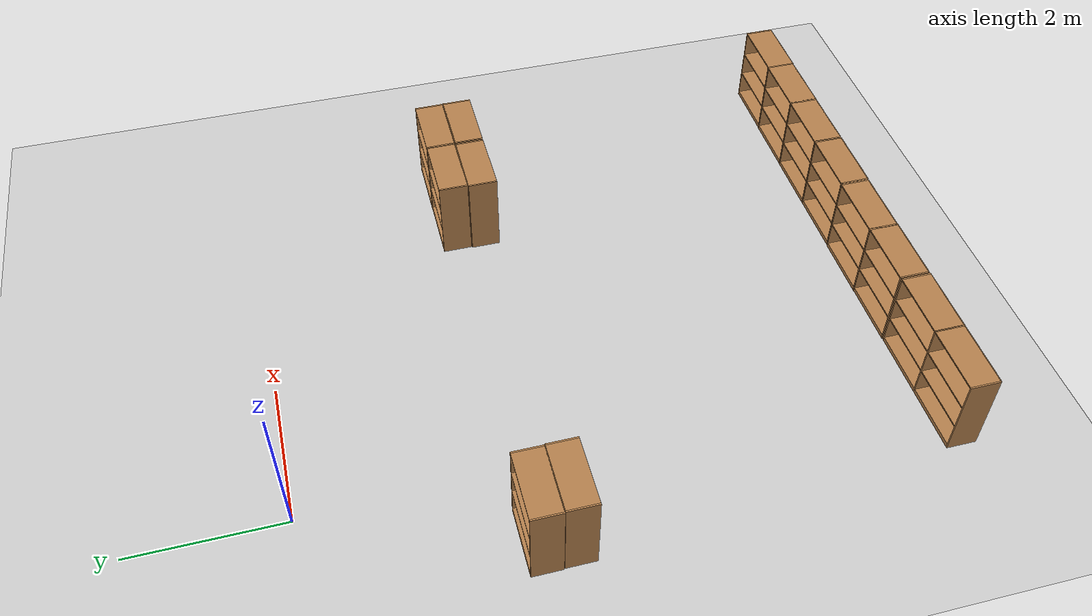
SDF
<sdf version="1.7">
 <world name="default">
  <model name="ground_plane">
   <static>1</static>
   <link name="link">
    <collision name="collision">
     <geometry><plane><normal>0 0 1</normal><size>100 100</size></plane></geometry>
     <surface><friction><ode><mu>100</mu><mu2>50</mu2></ode></friction></surface>
    </collision>
    <visual name="visual">
     <cast_shadows>0</cast_shadows>
     <geometry><plane><normal>0 0 1</normal><size>100 100</size></plane></geometry>
     <material>
      <script><uri>file://media/materials/scripts/gazebo.material</uri><name>Gazebo/Grey</name></script>
     </material>
    </visual>
   </link>
  </model>
  <model name="bookshelf">
   <static>1</static>
   <link name="link">
    <inertial><mass>1</mass></inertial>
    <collision name="back">
     <pose>0 0.005 0.6 0 -0 0</pose>
     <geometry><box><size>0.9 0.01 1.2</size></box></geometry>
    </collision>
    <visual name="visual1">
     <pose>0 0.005 0.6 0 -0 0</pose>
     <geometry><box><size>0.9 0.01 1.2</size></box></geometry>
     <material>
      <script><uri>file://media/materials/scripts/gazebo.material</uri><name>Gazebo/Wood</name></script>
     </material>
    </visual>
    <collision name="left_side">
     <pose>0.45 -0.195 0.6 0 -0 0</pose>
     <geometry><box><size>0.02 0.4 1.2</size></box></geometry>
    </collision>
    <visual name="visual2">
     <pose>0.45 -0.195 0.6 0 -0 0</pose>
     <geometry><box><size>0.02 0.4 1.2</size></box></geometry>
     <material>
      <script><uri>file://media/materials/scripts/gazebo.material</uri><name>Gazebo/Wood</name></script>
     </material>
    </visual>
    <collision name="right_side">
     <pose>-0.45 -0.195 0.6 0 -0 0</pose>
     <geometry><box><size>0.02 0.4 1.2</size></box></geometry>
    </collision>
    <visual name="visual3">
     <pose>-0.45 -0.195 0.6 0 -0 0</pose>
     <geometry><box><size>0.02 0.4 1.2</size></box></geometry>
     <material>
      <script><uri>file://media/materials/scripts/gazebo.material</uri><name>Gazebo/Wood</name></script>
     </material>
    </visual>
    <collision name="bottom">
     <pose>0 -0.195 0.03 0 -0 0</pose>
     <geometry><box><size>0.88 0.4 0.06</size></box></geometry>
    </collision>
    <visual name="visual4">
     <pose>0 -0.195 0.03 0 -0 0</pose>
     <geometry><box><size>0.88 0.4 0.06</size></box></geometry>
     <material>
      <script><uri>file://media/materials/scripts/gazebo.material</uri><name>Gazebo/Wood</name></script>
     </material>
    </visual>
    <collision name="top">
     <pose>0 -0.195 1.19 0 -0 0</pose>
     <geometry><box><size>0.88 0.4 0.02</size></box></geometry>
    </collision>
    <visual name="visual5">
     <pose>0 -0.195 1.19 0 -0 0</pose>
     <geometry><box><size>0.88 0.4 0.02</size></box></geometry>
     <material>
      <script><uri>file://media/materials/scripts/gazebo.material</uri><name>Gazebo/Wood</name></script>
     </material>
    </visual>
    <collision name="low_shelf">
     <pose>0 -0.195 0.43 0 -0 0</pose>
     <geometry><box><size>0.88 0.4 0.02</size></box></geometry>
    </collision>
    <visual name="visual6">
     <pose>0 -0.195 0.43 0 -0 0</pose>
     <geometry><box><size>0.88 0.4 0.02</size></box></geometry>
     <material>
      <script><uri>file://media/materials/scripts/gazebo.material</uri><name>Gazebo/Wood</name></script>
     </material>
    </visual>
    <collision name="high_shelf">
     <pose>0 -0.195 0.8 0 -0 0</pose>
     <geometry><box><size>0.88 0.4 0.02</size></box></geometry>
    </collision>
    <visual name="visual7">
     <pose>0 -0.195 0.8 0 -0 0</pose>
     <geometry><box><size>0.88 0.4 0.02</size></box></geometry>
     <material>
      <script><uri>file://media/materials/scripts/gazebo.material</uri><name>Gazebo/Wood</name></script>
     </material>
    </visual>
   </link>
   <pose>-0.509028 -8.39134 0 0 0 -3.14107</pose>
  </model>
  <model name="bookshelf_clone">
   <static>1</static>
   <link name="link">
    <inertial><mass>1</mass></inertial>
    <collision name="back">
     <pose>0 0.005 0.6 0 -0 0</pose>
     <geometry><box><size>0.9 0.01 1.2</size></box></geometry>
    </collision>
    <visual name="visual1">
     <pose>0 0.005 0.6 0 -0 0</pose>
     <geometry><box><size>0.9 0.01 1.2</size></box></geometry>
     <material>
      <script><uri>file://media/materials/scripts/gazebo.material</uri><name>Gazebo/Wood</name></script>
     </material>
    </visual>
    <collision name="left_side">
     <pose>0.45 -0.195 0.6 0 -0 0</pose>
     <geometry><box><size>0.02 0.4 1.2</size></box></geometry>
    </collision>
    <visual name="visual2">
     <pose>0.45 -0.195 0.6 0 -0 0</pose>
     <geometry><box><size>0.02 0.4 1.2</size></box></geometry>
     <material>
      <script><uri>file://media/materials/scripts/gazebo.material</uri><name>Gazebo/Wood</name></script>
     </material>
    </visual>
    <collision name="right_side">
     <pose>-0.45 -0.195 0.6 0 -0 0</pose>
     <geometry><box><size>0.02 0.4 1.2</size></box></geometry>
    </collision>
    <visual name="visual3">
     <pose>-0.45 -0.195 0.6 0 -0 0</pose>
     <geometry><box><size>0.02 0.4 1.2</size></box></geometry>
     <material>
      <script><uri>file://media/materials/scripts/gazebo.material</uri><name>Gazebo/Wood</name></script>
     </material>
    </visual>
    <collision name="bottom">
     <pose>0 -0.195 0.03 0 -0 0</pose>
     <geometry><box><size>0.88 0.4 0.06</size></box></geometry>
    </collision>
    <visual name="visual4">
     <pose>0 -0.195 0.03 0 -0 0</pose>
     <geometry><box><size>0.88 0.4 0.06</size></box></geometry>
     <material>
      <script><uri>file://media/materials/scripts/gazebo.material</uri><name>Gazebo/Wood</name></script>
     </material>
    </visual>
    <collision name="top">
     <pose>0 -0.195 1.19 0 -0 0</pose>
     <geometry><box><size>0.88 0.4 0.02</size></box></geometry>
    </collision>
    <visual name="visual5">
     <pose>0 -0.195 1.19 0 -0 0</pose>
     <geometry><box><size>0.88 0.4 0.02</size></box></geometry>
     <material>
      <script><uri>file://media/materials/scripts/gazebo.material</uri><name>Gazebo/Wood</name></script>
     </material>
    </visual>
    <collision name="low_shelf">
     <pose>0 -0.195 0.43 0 -0 0</pose>
     <geometry><box><size>0.88 0.4 0.02</size></box></geometry>
    </collision>
    <visual name="visual6">
     <pose>0 -0.195 0.43 0 -0 0</pose>
     <geometry><box><size>0.88 0.4 0.02</size></box></geometry>
     <material>
      <script><uri>file://media/materials/scripts/gazebo.material</uri><name>Gazebo/Wood</name></script>
     </material>
    </visual>
    <collision name="high_shelf">
     <pose>0 -0.195 0.8 0 -0 0</pose>
     <geometry><box><size>0.88 0.4 0.02</size></box></geometry>
    </collision>
    <visual name="visual7">
     <pose>0 -0.195 0.8 0 -0 0</pose>
     <geometry><box><size>0.88 0.4 0.02</size></box></geometry>
     <material>
      <script><uri>file://media/materials/scripts/gazebo.material</uri><name>Gazebo/Wood</name></script>
     </material>
    </visual>
   </link>
   <pose>0.39286 -8.39134 0 0 0 -3.14107</pose>
  </model>
  <model name="bookshelf_clone_0_clone_0_clone_clone_clone_clone_clone">
   <static>1</static>
   <link name="link">
    <inertial><mass>1</mass></inertial>
    <collision name="back">
     <pose>0 0.005 0.6 0 -0 0</pose>
     <geometry><box><size>0.9 0.01 1.2</size></box></geometry>
    </collision>
    <visual name="visual1">
     <pose>0 0.005 0.6 0 -0 0</pose>
     <geometry><box><size>0.9 0.01 1.2</size></box></geometry>
     <material>
      <script><uri>file://media/materials/scripts/gazebo.material</uri><name>Gazebo/Wood</name></script>
     </material>
    </visual>
    <collision name="left_side">
     <pose>0.45 -0.195 0.6 0 -0 0</pose>
     <geometry><box><size>0.02 0.4 1.2</size></box></geometry>
    </collision>
    <visual name="visual2">
     <pose>0.45 -0.195 0.6 0 -0 0</pose>
     <geometry><box><size>0.02 0.4 1.2</size></box></geometry>
     <material>
      <script><uri>file://media/materials/scripts/gazebo.material</uri><name>Gazebo/Wood</name></script>
     </material>
    </visual>
    <collision name="right_side">
     <pose>-0.45 -0.195 0.6 0 -0 0</pose>
     <geometry><box><size>0.02 0.4 1.2</size></box></geometry>
    </collision>
    <visual name="visual3">
     <pose>-0.45 -0.195 0.6 0 -0 0</pose>
     <geometry><box><size>0.02 0.4 1.2</size></box></geometry>
     <material>
      <script><uri>file://media/materials/scripts/gazebo.material</uri><name>Gazebo/Wood</name></script>
     </material>
    </visual>
    <collision name="bottom">
     <pose>0 -0.195 0.03 0 -0 0</pose>
     <geometry><box><size>0.88 0.4 0.06</size></box></geometry>
    </collision>
    <visual name="visual4">
     <pose>0 -0.195 0.03 0 -0 0</pose>
     <geometry><box><size>0.88 0.4 0.06</size></box></geometry>
     <material>
      <script><uri>file://media/materials/scripts/gazebo.material</uri><name>Gazebo/Wood</name></script>
     </material>
    </visual>
    <collision name="top">
     <pose>0 -0.195 1.19 0 -0 0</pose>
     <geometry><box><size>0.88 0.4 0.02</size></box></geometry>
    </collision>
    <visual name="visual5">
     <pose>0 -0.195 1.19 0 -0 0</pose>
     <geometry><box><size>0.88 0.4 0.02</size></box></geometry>
     <material>
      <script><uri>file://media/materials/scripts/gazebo.material</uri><name>Gazebo/Wood</name></script>
     </material>
    </visual>
    <collision name="low_shelf">
     <pose>0 -0.195 0.43 0 -0 0</pose>
     <geometry><box><size>0.88 0.4 0.02</size></box></geometry>
    </collision>
    <visual name="visual6">
     <pose>0 -0.195 0.43 0 -0 0</pose>
     <geometry><box><size>0.88 0.4 0.02</size></box></geometry>
     <material>
      <script><uri>file://media/materials/scripts/gazebo.material</uri><name>Gazebo/Wood</name></script>
     </material>
    </visual>
    <collision name="high_shelf">
     <pose>0 -0.195 0.8 0 -0 0</pose>
     <geometry><box><size>0.88 0.4 0.02</size></box></geometry>
    </collision>
    <visual name="visual7">
     <pose>0 -0.195 0.8 0 -0 0</pose>
     <geometry><box><size>0.88 0.4 0.02</size></box></geometry>
     <material>
      <script><uri>file://media/materials/scripts/gazebo.material</uri><name>Gazebo/Wood</name></script>
     </material>
    </visual>
   </link>
   <pose>-0.940238 -2.94994 0 0 0 -3.14107</pose>
  </model>
  <model name="bookshelf_clone_0_clone_0_clone_clone_clone_clone_clone_1_clone_clone_clone_clone_clone_clone_clone_clone_clone_clone_0_clone_clone_clone_clone_clone_0_clone">
   <static>1</static>
   <link name="link">
    <inertial><mass>1</mass></inertial>
    <collision name="back">
     <pose>0 0.005 0.6 0 -0 0</pose>
     <geometry><box><size>0.9 0.01 1.2</size></box></geometry>
    </collision>
    <visual name="visual1">
     <pose>0 0.005 0.6 0 -0 0</pose>
     <geometry><box><size>0.9 0.01 1.2</size></box></geometry>
     <material>
      <script><uri>file://media/materials/scripts/gazebo.material</uri><name>Gazebo/Wood</name></script>
     </material>
    </visual>
    <collision name="left_side">
     <pose>0.45 -0.195 0.6 0 -0 0</pose>
     <geometry><box><size>0.02 0.4 1.2</size></box></geometry>
    </collision>
    <visual name="visual2">
     <pose>0.45 -0.195 0.6 0 -0 0</pose>
     <geometry><box><size>0.02 0.4 1.2</size></box></geometry>
     <material>
      <script><uri>file://media/materials/scripts/gazebo.material</uri><name>Gazebo/Wood</name></script>
     </material>
    </visual>
    <collision name="right_side">
     <pose>-0.45 -0.195 0.6 0 -0 0</pose>
     <geometry><box><size>0.02 0.4 1.2</size></box></geometry>
    </collision>
    <visual name="visual3">
     <pose>-0.45 -0.195 0.6 0 -0 0</pose>
     <geometry><box><size>0.02 0.4 1.2</size></box></geometry>
     <material>
      <script><uri>file://media/materials/scripts/gazebo.material</uri><name>Gazebo/Wood</name></script>
     </material>
    </visual>
    <collision name="bottom">
     <pose>0 -0.195 0.03 0 -0 0</pose>
     <geometry><box><size>0.88 0.4 0.06</size></box></geometry>
    </collision>
    <visual name="visual4">
     <pose>0 -0.195 0.03 0 -0 0</pose>
     <geometry><box><size>0.88 0.4 0.06</size></box></geometry>
     <material>
      <script><uri>file://media/materials/scripts/gazebo.material</uri><name>Gazebo/Wood</name></script>
     </material>
    </visual>
    <collision name="top">
     <pose>0 -0.195 1.19 0 -0 0</pose>
     <geometry><box><size>0.88 0.4 0.02</size></box></geometry>
    </collision>
    <visual name="visual5">
     <pose>0 -0.195 1.19 0 -0 0</pose>
     <geometry><box><size>0.88 0.4 0.02</size></box></geometry>
     <material>
      <script><uri>file://media/materials/scripts/gazebo.material</uri><name>Gazebo/Wood</name></script>
     </material>
    </visual>
    <collision name="low_shelf">
     <pose>0 -0.195 0.43 0 -0 0</pose>
     <geometry><box><size>0.88 0.4 0.02</size></box></geometry>
    </collision>
    <visual name="visual6">
     <pose>0 -0.195 0.43 0 -0 0</pose>
     <geometry><box><size>0.88 0.4 0.02</size></box></geometry>
     <material>
      <script><uri>file://media/materials/scripts/gazebo.material</uri><name>Gazebo/Wood</name></script>
     </material>
    </visual>
    <collision name="high_shelf">
     <pose>0 -0.195 0.8 0 -0 0</pose>
     <geometry><box><size>0.88 0.4 0.02</size></box></geometry>
    </collision>
    <visual name="visual7">
     <pose>0 -0.195 0.8 0 -0 0</pose>
     <geometry><box><size>0.88 0.4 0.02</size></box></geometry>
     <material>
      <script><uri>file://media/materials/scripts/gazebo.material</uri><name>Gazebo/Wood</name></script>
     </material>
    </visual>
   </link>
   <pose>-0.933109 -2.966 0.004614 0 -0 0.000147</pose>
  </model>
  <model name="bookshelf_clone_0_clone_0_clone_clone_clone_clone_0">
   <static>1</static>
   <link name="link">
    <inertial><mass>1</mass></inertial>
    <collision name="back">
     <pose>0 0.005 0.6 0 -0 0</pose>
     <geometry><box><size>0.9 0.01 1.2</size></box></geometry>
    </collision>
    <visual name="visual1">
     <pose>0 0.005 0.6 0 -0 0</pose>
     <geometry><box><size>0.9 0.01 1.2</size></box></geometry>
     <material>
      <script><uri>file://media/materials/scripts/gazebo.material</uri><name>Gazebo/Wood</name></script>
     </material>
    </visual>
    <collision name="left_side">
     <pose>0.45 -0.195 0.6 0 -0 0</pose>
     <geometry><box><size>0.02 0.4 1.2</size></box></geometry>
    </collision>
    <visual name="visual2">
     <pose>0.45 -0.195 0.6 0 -0 0</pose>
     <geometry><box><size>0.02 0.4 1.2</size></box></geometry>
     <material>
      <script><uri>file://media/materials/scripts/gazebo.material</uri><name>Gazebo/Wood</name></script>
     </material>
    </visual>
    <collision name="right_side">
     <pose>-0.45 -0.195 0.6 0 -0 0</pose>
     <geometry><box><size>0.02 0.4 1.2</size></box></geometry>
    </collision>
    <visual name="visual3">
     <pose>-0.45 -0.195 0.6 0 -0 0</pose>
     <geometry><box><size>0.02 0.4 1.2</size></box></geometry>
     <material>
      <script><uri>file://media/materials/scripts/gazebo.material</uri><name>Gazebo/Wood</name></script>
     </material>
    </visual>
    <collision name="bottom">
     <pose>0 -0.195 0.03 0 -0 0</pose>
     <geometry><box><size>0.88 0.4 0.06</size></box></geometry>
    </collision>
    <visual name="visual4">
     <pose>0 -0.195 0.03 0 -0 0</pose>
     <geometry><box><size>0.88 0.4 0.06</size></box></geometry>
     <material>
      <script><uri>file://media/materials/scripts/gazebo.material</uri><name>Gazebo/Wood</name></script>
     </material>
    </visual>
    <collision name="top">
     <pose>0 -0.195 1.19 0 -0 0</pose>
     <geometry><box><size>0.88 0.4 0.02</size></box></geometry>
    </collision>
    <visual name="visual5">
     <pose>0 -0.195 1.19 0 -0 0</pose>
     <geometry><box><size>0.88 0.4 0.02</size></box></geometry>
     <material>
      <script><uri>file://media/materials/scripts/gazebo.material</uri><name>Gazebo/Wood</name></script>
     </material>
    </visual>
    <collision name="low_shelf">
     <pose>0 -0.195 0.43 0 -0 0</pose>
     <geometry><box><size>0.88 0.4 0.02</size></box></geometry>
    </collision>
    <visual name="visual6">
     <pose>0 -0.195 0.43 0 -0 0</pose>
     <geometry><box><size>0.88 0.4 0.02</size></box></geometry>
     <material>
      <script><uri>file://media/materials/scripts/gazebo.material</uri><name>Gazebo/Wood</name></script>
     </material>
    </visual>
    <collision name="high_shelf">
     <pose>0 -0.195 0.8 0 -0 0</pose>
     <geometry><box><size>0.88 0.4 0.02</size></box></geometry>
    </collision>
    <visual name="visual7">
     <pose>0 -0.195 0.8 0 -0 0</pose>
     <geometry><box><size>0.88 0.4 0.02</size></box></geometry>
     <material>
      <script><uri>file://media/materials/scripts/gazebo.material</uri><name>Gazebo/Wood</name></script>
     </material>
    </visual>
   </link>
   <pose>4.40371 -2.98907 0 0 0 -3.14107</pose>
  </model>
  <model name="bookshelf_clone_0_clone_0_clone_clone_clone_clone_1">
   <static>1</static>
   <link name="link">
    <inertial><mass>1</mass></inertial>
    <collision name="back">
     <pose>0 0.005 0.6 0 -0 0</pose>
     <geometry><box><size>0.9 0.01 1.2</size></box></geometry>
    </collision>
    <visual name="visual1">
     <pose>0 0.005 0.6 0 -0 0</pose>
     <geometry><box><size>0.9 0.01 1.2</size></box></geometry>
     <material>
      <script><uri>file://media/materials/scripts/gazebo.material</uri><name>Gazebo/Wood</name></script>
     </material>
    </visual>
    <collision name="left_side">
     <pose>0.45 -0.195 0.6 0 -0 0</pose>
     <geometry><box><size>0.02 0.4 1.2</size></box></geometry>
    </collision>
    <visual name="visual2">
     <pose>0.45 -0.195 0.6 0 -0 0</pose>
     <geometry><box><size>0.02 0.4 1.2</size></box></geometry>
     <material>
      <script><uri>file://media/materials/scripts/gazebo.material</uri><name>Gazebo/Wood</name></script>
     </material>
    </visual>
    <collision name="right_side">
     <pose>-0.45 -0.195 0.6 0 -0 0</pose>
     <geometry><box><size>0.02 0.4 1.2</size></box></geometry>
    </collision>
    <visual name="visual3">
     <pose>-0.45 -0.195 0.6 0 -0 0</pose>
     <geometry><box><size>0.02 0.4 1.2</size></box></geometry>
     <material>
      <script><uri>file://media/materials/scripts/gazebo.material</uri><name>Gazebo/Wood</name></script>
     </material>
    </visual>
    <collision name="bottom">
     <pose>0 -0.195 0.03 0 -0 0</pose>
     <geometry><box><size>0.88 0.4 0.06</size></box></geometry>
    </collision>
    <visual name="visual4">
     <pose>0 -0.195 0.03 0 -0 0</pose>
     <geometry><box><size>0.88 0.4 0.06</size></box></geometry>
     <material>
      <script><uri>file://media/materials/scripts/gazebo.material</uri><name>Gazebo/Wood</name></script>
     </material>
    </visual>
    <collision name="top">
     <pose>0 -0.195 1.19 0 -0 0</pose>
     <geometry><box><size>0.88 0.4 0.02</size></box></geometry>
    </collision>
    <visual name="visual5">
     <pose>0 -0.195 1.19 0 -0 0</pose>
     <geometry><box><size>0.88 0.4 0.02</size></box></geometry>
     <material>
      <script><uri>file://media/materials/scripts/gazebo.material</uri><name>Gazebo/Wood</name></script>
     </material>
    </visual>
    <collision name="low_shelf">
     <pose>0 -0.195 0.43 0 -0 0</pose>
     <geometry><box><size>0.88 0.4 0.02</size></box></geometry>
    </collision>
    <visual name="visual6">
     <pose>0 -0.195 0.43 0 -0 0</pose>
     <geometry><box><size>0.88 0.4 0.02</size></box></geometry>
     <material>
      <script><uri>file://media/materials/scripts/gazebo.material</uri><name>Gazebo/Wood</name></script>
     </material>
    </visual>
    <collision name="high_shelf">
     <pose>0 -0.195 0.8 0 -0 0</pose>
     <geometry><box><size>0.88 0.4 0.02</size></box></geometry>
    </collision>
    <visual name="visual7">
     <pose>0 -0.195 0.8 0 -0 0</pose>
     <geometry><box><size>0.88 0.4 0.02</size></box></geometry>
     <material>
      <script><uri>file://media/materials/scripts/gazebo.material</uri><name>Gazebo/Wood</name></script>
     </material>
    </visual>
   </link>
   <pose>5.31764 -2.98563 0 0 0 -3.14107</pose>
  </model>
  <model name="bookshelf_clone_clone_0">
   <static>1</static>
   <link name="link">
    <inertial><mass>1</mass></inertial>
    <collision name="back">
     <pose>0 0.005 0.6 0 -0 0</pose>
     <geometry><box><size>0.9 0.01 1.2</size></box></geometry>
    </collision>
    <visual name="visual1">
     <pose>0 0.005 0.6 0 -0 0</pose>
     <geometry><box><size>0.9 0.01 1.2</size></box></geometry>
     <material>
      <script><uri>file://media/materials/scripts/gazebo.material</uri><name>Gazebo/Wood</name></script>
     </material>
    </visual>
    <collision name="left_side">
     <pose>0.45 -0.195 0.6 0 -0 0</pose>
     <geometry><box><size>0.02 0.4 1.2</size></box></geometry>
    </collision>
    <visual name="visual2">
     <pose>0.45 -0.195 0.6 0 -0 0</pose>
     <geometry><box><size>0.02 0.4 1.2</size></box></geometry>
     <material>
      <script><uri>file://media/materials/scripts/gazebo.material</uri><name>Gazebo/Wood</name></script>
     </material>
    </visual>
    <collision name="right_side">
     <pose>-0.45 -0.195 0.6 0 -0 0</pose>
     <geometry><box><size>0.02 0.4 1.2</size></box></geometry>
    </collision>
    <visual name="visual3">
     <pose>-0.45 -0.195 0.6 0 -0 0</pose>
     <geometry><box><size>0.02 0.4 1.2</size></box></geometry>
     <material>
      <script><uri>file://media/materials/scripts/gazebo.material</uri><name>Gazebo/Wood</name></script>
     </material>
    </visual>
    <collision name="bottom">
     <pose>0 -0.195 0.03 0 -0 0</pose>
     <geometry><box><size>0.88 0.4 0.06</size></box></geometry>
    </collision>
    <visual name="visual4">
     <pose>0 -0.195 0.03 0 -0 0</pose>
     <geometry><box><size>0.88 0.4 0.06</size></box></geometry>
     <material>
      <script><uri>file://media/materials/scripts/gazebo.material</uri><name>Gazebo/Wood</name></script>
     </material>
    </visual>
    <collision name="top">
     <pose>0 -0.195 1.19 0 -0 0</pose>
     <geometry><box><size>0.88 0.4 0.02</size></box></geometry>
    </collision>
    <visual name="visual5">
     <pose>0 -0.195 1.19 0 -0 0</pose>
     <geometry><box><size>0.88 0.4 0.02</size></box></geometry>
     <material>
      <script><uri>file://media/materials/scripts/gazebo.material</uri><name>Gazebo/Wood</name></script>
     </material>
    </visual>
    <collision name="low_shelf">
     <pose>0 -0.195 0.43 0 -0 0</pose>
     <geometry><box><size>0.88 0.4 0.02</size></box></geometry>
    </collision>
    <visual name="visual6">
     <pose>0 -0.195 0.43 0 -0 0</pose>
     <geometry><box><size>0.88 0.4 0.02</size></box></geometry>
     <material>
      <script><uri>file://media/materials/scripts/gazebo.material</uri><name>Gazebo/Wood</name></script>
     </material>
    </visual>
    <collision name="high_shelf">
     <pose>0 -0.195 0.8 0 -0 0</pose>
     <geometry><box><size>0.88 0.4 0.02</size></box></geometry>
    </collision>
    <visual name="visual7">
     <pose>0 -0.195 0.8 0 -0 0</pose>
     <geometry><box><size>0.88 0.4 0.02</size></box></geometry>
     <material>
      <script><uri>file://media/materials/scripts/gazebo.material</uri><name>Gazebo/Wood</name></script>
     </material>
    </visual>
   </link>
   <pose>1.32278 -8.38482 0 0 0 -3.14107</pose>
  </model>
  <model name="bookshelf_clone_clone_1">
   <static>1</static>
   <link name="link">
    <inertial><mass>1</mass></inertial>
    <collision name="back">
     <pose>0 0.005 0.6 0 -0 0</pose>
     <geometry><box><size>0.9 0.01 1.2</size></box></geometry>
    </collision>
    <visual name="visual1">
     <pose>0 0.005 0.6 0 -0 0</pose>
     <geometry><box><size>0.9 0.01 1.2</size></box></geometry>
     <material>
      <script><uri>file://media/materials/scripts/gazebo.material</uri><name>Gazebo/Wood</name></script>
     </material>
    </visual>
    <collision name="left_side">
     <pose>0.45 -0.195 0.6 0 -0 0</pose>
     <geometry><box><size>0.02 0.4 1.2</size></box></geometry>
    </collision>
    <visual name="visual2">
     <pose>0.45 -0.195 0.6 0 -0 0</pose>
     <geometry><box><size>0.02 0.4 1.2</size></box></geometry>
     <material>
      <script><uri>file://media/materials/scripts/gazebo.material</uri><name>Gazebo/Wood</name></script>
     </material>
    </visual>
    <collision name="right_side">
     <pose>-0.45 -0.195 0.6 0 -0 0</pose>
     <geometry><box><size>0.02 0.4 1.2</size></box></geometry>
    </collision>
    <visual name="visual3">
     <pose>-0.45 -0.195 0.6 0 -0 0</pose>
     <geometry><box><size>0.02 0.4 1.2</size></box></geometry>
     <material>
      <script><uri>file://media/materials/scripts/gazebo.material</uri><name>Gazebo/Wood</name></script>
     </material>
    </visual>
    <collision name="bottom">
     <pose>0 -0.195 0.03 0 -0 0</pose>
     <geometry><box><size>0.88 0.4 0.06</size></box></geometry>
    </collision>
    <visual name="visual4">
     <pose>0 -0.195 0.03 0 -0 0</pose>
     <geometry><box><size>0.88 0.4 0.06</size></box></geometry>
     <material>
      <script><uri>file://media/materials/scripts/gazebo.material</uri><name>Gazebo/Wood</name></script>
     </material>
    </visual>
    <collision name="top">
     <pose>0 -0.195 1.19 0 -0 0</pose>
     <geometry><box><size>0.88 0.4 0.02</size></box></geometry>
    </collision>
    <visual name="visual5">
     <pose>0 -0.195 1.19 0 -0 0</pose>
     <geometry><box><size>0.88 0.4 0.02</size></box></geometry>
     <material>
      <script><uri>file://media/materials/scripts/gazebo.material</uri><name>Gazebo/Wood</name></script>
     </material>
    </visual>
    <collision name="low_shelf">
     <pose>0 -0.195 0.43 0 -0 0</pose>
     <geometry><box><size>0.88 0.4 0.02</size></box></geometry>
    </collision>
    <visual name="visual6">
     <pose>0 -0.195 0.43 0 -0 0</pose>
     <geometry><box><size>0.88 0.4 0.02</size></box></geometry>
     <material>
      <script><uri>file://media/materials/scripts/gazebo.material</uri><name>Gazebo/Wood</name></script>
     </material>
    </visual>
    <collision name="high_shelf">
     <pose>0 -0.195 0.8 0 -0 0</pose>
     <geometry><box><size>0.88 0.4 0.02</size></box></geometry>
    </collision>
    <visual name="visual7">
     <pose>0 -0.195 0.8 0 -0 0</pose>
     <geometry><box><size>0.88 0.4 0.02</size></box></geometry>
     <material>
      <script><uri>file://media/materials/scripts/gazebo.material</uri><name>Gazebo/Wood</name></script>
     </material>
    </visual>
   </link>
   <pose>2.22926 -8.38065 0 0 0 -3.14107</pose>
  </model>
  <model name="bookshelf_clone_clone_1_clone">
   <static>1</static>
   <link name="link">
    <inertial><mass>1</mass></inertial>
    <collision name="back">
     <pose>0 0.005 0.6 0 -0 0</pose>
     <geometry><box><size>0.9 0.01 1.2</size></box></geometry>
    </collision>
    <visual name="visual1">
     <pose>0 0.005 0.6 0 -0 0</pose>
     <geometry><box><size>0.9 0.01 1.2</size></box></geometry>
     <material>
      <script><uri>file://media/materials/scripts/gazebo.material</uri><name>Gazebo/Wood</name></script>
     </material>
    </visual>
    <collision name="left_side">
     <pose>0.45 -0.195 0.6 0 -0 0</pose>
     <geometry><box><size>0.02 0.4 1.2</size></box></geometry>
    </collision>
    <visual name="visual2">
     <pose>0.45 -0.195 0.6 0 -0 0</pose>
     <geometry><box><size>0.02 0.4 1.2</size></box></geometry>
     <material>
      <script><uri>file://media/materials/scripts/gazebo.material</uri><name>Gazebo/Wood</name></script>
     </material>
    </visual>
    <collision name="right_side">
     <pose>-0.45 -0.195 0.6 0 -0 0</pose>
     <geometry><box><size>0.02 0.4 1.2</size></box></geometry>
    </collision>
    <visual name="visual3">
     <pose>-0.45 -0.195 0.6 0 -0 0</pose>
     <geometry><box><size>0.02 0.4 1.2</size></box></geometry>
     <material>
      <script><uri>file://media/materials/scripts/gazebo.material</uri><name>Gazebo/Wood</name></script>
     </material>
    </visual>
    <collision name="bottom">
     <pose>0 -0.195 0.03 0 -0 0</pose>
     <geometry><box><size>0.88 0.4 0.06</size></box></geometry>
    </collision>
    <visual name="visual4">
     <pose>0 -0.195 0.03 0 -0 0</pose>
     <geometry><box><size>0.88 0.4 0.06</size></box></geometry>
     <material>
      <script><uri>file://media/materials/scripts/gazebo.material</uri><name>Gazebo/Wood</name></script>
     </material>
    </visual>
    <collision name="top">
     <pose>0 -0.195 1.19 0 -0 0</pose>
     <geometry><box><size>0.88 0.4 0.02</size></box></geometry>
    </collision>
    <visual name="visual5">
     <pose>0 -0.195 1.19 0 -0 0</pose>
     <geometry><box><size>0.88 0.4 0.02</size></box></geometry>
     <material>
      <script><uri>file://media/materials/scripts/gazebo.material</uri><name>Gazebo/Wood</name></script>
     </material>
    </visual>
    <collision name="low_shelf">
     <pose>0 -0.195 0.43 0 -0 0</pose>
     <geometry><box><size>0.88 0.4 0.02</size></box></geometry>
    </collision>
    <visual name="visual6">
     <pose>0 -0.195 0.43 0 -0 0</pose>
     <geometry><box><size>0.88 0.4 0.02</size></box></geometry>
     <material>
      <script><uri>file://media/materials/scripts/gazebo.material</uri><name>Gazebo/Wood</name></script>
     </material>
    </visual>
    <collision name="high_shelf">
     <pose>0 -0.195 0.8 0 -0 0</pose>
     <geometry><box><size>0.88 0.4 0.02</size></box></geometry>
    </collision>
    <visual name="visual7">
     <pose>0 -0.195 0.8 0 -0 0</pose>
     <geometry><box><size>0.88 0.4 0.02</size></box></geometry>
     <material>
      <script><uri>file://media/materials/scripts/gazebo.material</uri><name>Gazebo/Wood</name></script>
     </material>
    </visual>
   </link>
   <pose>3.15267 -8.38707 0 0 0 -3.14107</pose>
  </model>
  <model name="bookshelf_clone_clone_1_clone_clone">
   <static>1</static>
   <link name="link">
    <inertial><mass>1</mass></inertial>
    <collision name="back">
     <pose>0 0.005 0.6 0 -0 0</pose>
     <geometry><box><size>0.9 0.01 1.2</size></box></geometry>
    </collision>
    <visual name="visual1">
     <pose>0 0.005 0.6 0 -0 0</pose>
     <geometry><box><size>0.9 0.01 1.2</size></box></geometry>
     <material>
      <script><uri>file://media/materials/scripts/gazebo.material</uri><name>Gazebo/Wood</name></script>
     </material>
    </visual>
    <collision name="left_side">
     <pose>0.45 -0.195 0.6 0 -0 0</pose>
     <geometry><box><size>0.02 0.4 1.2</size></box></geometry>
    </collision>
    <visual name="visual2">
     <pose>0.45 -0.195 0.6 0 -0 0</pose>
     <geometry><box><size>0.02 0.4 1.2</size></box></geometry>
     <material>
      <script><uri>file://media/materials/scripts/gazebo.material</uri><name>Gazebo/Wood</name></script>
     </material>
    </visual>
    <collision name="right_side">
     <pose>-0.45 -0.195 0.6 0 -0 0</pose>
     <geometry><box><size>0.02 0.4 1.2</size></box></geometry>
    </collision>
    <visual name="visual3">
     <pose>-0.45 -0.195 0.6 0 -0 0</pose>
     <geometry><box><size>0.02 0.4 1.2</size></box></geometry>
     <material>
      <script><uri>file://media/materials/scripts/gazebo.material</uri><name>Gazebo/Wood</name></script>
     </material>
    </visual>
    <collision name="bottom">
     <pose>0 -0.195 0.03 0 -0 0</pose>
     <geometry><box><size>0.88 0.4 0.06</size></box></geometry>
    </collision>
    <visual name="visual4">
     <pose>0 -0.195 0.03 0 -0 0</pose>
     <geometry><box><size>0.88 0.4 0.06</size></box></geometry>
     <material>
      <script><uri>file://media/materials/scripts/gazebo.material</uri><name>Gazebo/Wood</name></script>
     </material>
    </visual>
    <collision name="top">
     <pose>0 -0.195 1.19 0 -0 0</pose>
     <geometry><box><size>0.88 0.4 0.02</size></box></geometry>
    </collision>
    <visual name="visual5">
     <pose>0 -0.195 1.19 0 -0 0</pose>
     <geometry><box><size>0.88 0.4 0.02</size></box></geometry>
     <material>
      <script><uri>file://media/materials/scripts/gazebo.material</uri><name>Gazebo/Wood</name></script>
     </material>
    </visual>
    <collision name="low_shelf">
     <pose>0 -0.195 0.43 0 -0 0</pose>
     <geometry><box><size>0.88 0.4 0.02</size></box></geometry>
    </collision>
    <visual name="visual6">
     <pose>0 -0.195 0.43 0 -0 0</pose>
     <geometry><box><size>0.88 0.4 0.02</size></box></geometry>
     <material>
      <script><uri>file://media/materials/scripts/gazebo.material</uri><name>Gazebo/Wood</name></script>
     </material>
    </visual>
    <collision name="high_shelf">
     <pose>0 -0.195 0.8 0 -0 0</pose>
     <geometry><box><size>0.88 0.4 0.02</size></box></geometry>
    </collision>
    <visual name="visual7">
     <pose>0 -0.195 0.8 0 -0 0</pose>
     <geometry><box><size>0.88 0.4 0.02</size></box></geometry>
     <material>
      <script><uri>file://media/materials/scripts/gazebo.material</uri><name>Gazebo/Wood</name></script>
     </material>
    </visual>
   </link>
   <pose>4.0663 -8.38554 0 0 0 -3.14107</pose>
  </model>
  <model name="bookshelf_clone_clone_1_clone_clone_0">
   <static>1</static>
   <link name="link">
    <inertial><mass>1</mass></inertial>
    <collision name="back">
     <pose>0 0.005 0.6 0 -0 0</pose>
     <geometry><box><size>0.9 0.01 1.2</size></box></geometry>
    </collision>
    <visual name="visual1">
     <pose>0 0.005 0.6 0 -0 0</pose>
     <geometry><box><size>0.9 0.01 1.2</size></box></geometry>
     <material>
      <script><uri>file://media/materials/scripts/gazebo.material</uri><name>Gazebo/Wood</name></script>
     </material>
    </visual>
    <collision name="left_side">
     <pose>0.45 -0.195 0.6 0 -0 0</pose>
     <geometry><box><size>0.02 0.4 1.2</size></box></geometry>
    </collision>
    <visual name="visual2">
     <pose>0.45 -0.195 0.6 0 -0 0</pose>
     <geometry><box><size>0.02 0.4 1.2</size></box></geometry>
     <material>
      <script><uri>file://media/materials/scripts/gazebo.material</uri><name>Gazebo/Wood</name></script>
     </material>
    </visual>
    <collision name="right_side">
     <pose>-0.45 -0.195 0.6 0 -0 0</pose>
     <geometry><box><size>0.02 0.4 1.2</size></box></geometry>
    </collision>
    <visual name="visual3">
     <pose>-0.45 -0.195 0.6 0 -0 0</pose>
     <geometry><box><size>0.02 0.4 1.2</size></box></geometry>
     <material>
      <script><uri>file://media/materials/scripts/gazebo.material</uri><name>Gazebo/Wood</name></script>
     </material>
    </visual>
    <collision name="bottom">
     <pose>0 -0.195 0.03 0 -0 0</pose>
     <geometry><box><size>0.88 0.4 0.06</size></box></geometry>
    </collision>
    <visual name="visual4">
     <pose>0 -0.195 0.03 0 -0 0</pose>
     <geometry><box><size>0.88 0.4 0.06</size></box></geometry>
     <material>
      <script><uri>file://media/materials/scripts/gazebo.material</uri><name>Gazebo/Wood</name></script>
     </material>
    </visual>
    <collision name="top">
     <pose>0 -0.195 1.19 0 -0 0</pose>
     <geometry><box><size>0.88 0.4 0.02</size></box></geometry>
    </collision>
    <visual name="visual5">
     <pose>0 -0.195 1.19 0 -0 0</pose>
     <geometry><box><size>0.88 0.4 0.02</size></box></geometry>
     <material>
      <script><uri>file://media/materials/scripts/gazebo.material</uri><name>Gazebo/Wood</name></script>
     </material>
    </visual>
    <collision name="low_shelf">
     <pose>0 -0.195 0.43 0 -0 0</pose>
     <geometry><box><size>0.88 0.4 0.02</size></box></geometry>
    </collision>
    <visual name="visual6">
     <pose>0 -0.195 0.43 0 -0 0</pose>
     <geometry><box><size>0.88 0.4 0.02</size></box></geometry>
     <material>
      <script><uri>file://media/materials/scripts/gazebo.material</uri><name>Gazebo/Wood</name></script>
     </material>
    </visual>
    <collision name="high_shelf">
     <pose>0 -0.195 0.8 0 -0 0</pose>
     <geometry><box><size>0.88 0.4 0.02</size></box></geometry>
    </collision>
    <visual name="visual7">
     <pose>0 -0.195 0.8 0 -0 0</pose>
     <geometry><box><size>0.88 0.4 0.02</size></box></geometry>
     <material>
      <script><uri>file://media/materials/scripts/gazebo.material</uri><name>Gazebo/Wood</name></script>
     </material>
    </visual>
   </link>
   <pose>4.95611 -8.38803 0 0 0 -3.14107</pose>
  </model>
  <model name="bookshelf_clone_clone_1_clone_clone_0_clone">
   <static>1</static>
   <link name="link">
    <inertial><mass>1</mass></inertial>
    <collision name="back">
     <pose>0 0.005 0.6 0 -0 0</pose>
     <geometry><box><size>0.9 0.01 1.2</size></box></geometry>
    </collision>
    <visual name="visual1">
     <pose>0 0.005 0.6 0 -0 0</pose>
     <geometry><box><size>0.9 0.01 1.2</size></box></geometry>
     <material>
      <script><uri>file://media/materials/scripts/gazebo.material</uri><name>Gazebo/Wood</name></script>
     </material>
    </visual>
    <collision name="left_side">
     <pose>0.45 -0.195 0.6 0 -0 0</pose>
     <geometry><box><size>0.02 0.4 1.2</size></box></geometry>
    </collision>
    <visual name="visual2">
     <pose>0.45 -0.195 0.6 0 -0 0</pose>
     <geometry><box><size>0.02 0.4 1.2</size></box></geometry>
     <material>
      <script><uri>file://media/materials/scripts/gazebo.material</uri><name>Gazebo/Wood</name></script>
     </material>
    </visual>
    <collision name="right_side">
     <pose>-0.45 -0.195 0.6 0 -0 0</pose>
     <geometry><box><size>0.02 0.4 1.2</size></box></geometry>
    </collision>
    <visual name="visual3">
     <pose>-0.45 -0.195 0.6 0 -0 0</pose>
     <geometry><box><size>0.02 0.4 1.2</size></box></geometry>
     <material>
      <script><uri>file://media/materials/scripts/gazebo.material</uri><name>Gazebo/Wood</name></script>
     </material>
    </visual>
    <collision name="bottom">
     <pose>0 -0.195 0.03 0 -0 0</pose>
     <geometry><box><size>0.88 0.4 0.06</size></box></geometry>
    </collision>
    <visual name="visual4">
     <pose>0 -0.195 0.03 0 -0 0</pose>
     <geometry><box><size>0.88 0.4 0.06</size></box></geometry>
     <material>
      <script><uri>file://media/materials/scripts/gazebo.material</uri><name>Gazebo/Wood</name></script>
     </material>
    </visual>
    <collision name="top">
     <pose>0 -0.195 1.19 0 -0 0</pose>
     <geometry><box><size>0.88 0.4 0.02</size></box></geometry>
    </collision>
    <visual name="visual5">
     <pose>0 -0.195 1.19 0 -0 0</pose>
     <geometry><box><size>0.88 0.4 0.02</size></box></geometry>
     <material>
      <script><uri>file://media/materials/scripts/gazebo.material</uri><name>Gazebo/Wood</name></script>
     </material>
    </visual>
    <collision name="low_shelf">
     <pose>0 -0.195 0.43 0 -0 0</pose>
     <geometry><box><size>0.88 0.4 0.02</size></box></geometry>
    </collision>
    <visual name="visual6">
     <pose>0 -0.195 0.43 0 -0 0</pose>
     <geometry><box><size>0.88 0.4 0.02</size></box></geometry>
     <material>
      <script><uri>file://media/materials/scripts/gazebo.material</uri><name>Gazebo/Wood</name></script>
     </material>
    </visual>
    <collision name="high_shelf">
     <pose>0 -0.195 0.8 0 -0 0</pose>
     <geometry><box><size>0.88 0.4 0.02</size></box></geometry>
    </collision>
    <visual name="visual7">
     <pose>0 -0.195 0.8 0 -0 0</pose>
     <geometry><box><size>0.88 0.4 0.02</size></box></geometry>
     <material>
      <script><uri>file://media/materials/scripts/gazebo.material</uri><name>Gazebo/Wood</name></script>
     </material>
    </visual>
   </link>
   <pose>5.85405 -8.39377 0 0 0 -3.14107</pose>
  </model>
  <model name="bookshelf_clone_0_clone_0_clone_clone_clone_clone_clone_1_clone_clone_clone_clone_clone_clone_clone_clone_clone_clone_0_clone_clone_clone_clone_clone_0_clone_1_clone_0">
   <static>1</static>
   <link name="link">
    <inertial><mass>1</mass></inertial>
    <collision name="back">
     <pose>0 0.005 0.6 0 -0 0</pose>
     <geometry><box><size>0.9 0.01 1.2</size></box></geometry>
    </collision>
    <visual name="visual1">
     <pose>0 0.005 0.6 0 -0 0</pose>
     <geometry><box><size>0.9 0.01 1.2</size></box></geometry>
     <material>
      <script><uri>file://media/materials/scripts/gazebo.material</uri><name>Gazebo/Wood</name></script>
     </material>
    </visual>
    <collision name="left_side">
     <pose>0.45 -0.195 0.6 0 -0 0</pose>
     <geometry><box><size>0.02 0.4 1.2</size></box></geometry>
    </collision>
    <visual name="visual2">
     <pose>0.45 -0.195 0.6 0 -0 0</pose>
     <geometry><box><size>0.02 0.4 1.2</size></box></geometry>
     <material>
      <script><uri>file://media/materials/scripts/gazebo.material</uri><name>Gazebo/Wood</name></script>
     </material>
    </visual>
    <collision name="right_side">
     <pose>-0.45 -0.195 0.6 0 -0 0</pose>
     <geometry><box><size>0.02 0.4 1.2</size></box></geometry>
    </collision>
    <visual name="visual3">
     <pose>-0.45 -0.195 0.6 0 -0 0</pose>
     <geometry><box><size>0.02 0.4 1.2</size></box></geometry>
     <material>
      <script><uri>file://media/materials/scripts/gazebo.material</uri><name>Gazebo/Wood</name></script>
     </material>
    </visual>
    <collision name="bottom">
     <pose>0 -0.195 0.03 0 -0 0</pose>
     <geometry><box><size>0.88 0.4 0.06</size></box></geometry>
    </collision>
    <visual name="visual4">
     <pose>0 -0.195 0.03 0 -0 0</pose>
     <geometry><box><size>0.88 0.4 0.06</size></box></geometry>
     <material>
      <script><uri>file://media/materials/scripts/gazebo.material</uri><name>Gazebo/Wood</name></script>
     </material>
    </visual>
    <collision name="top">
     <pose>0 -0.195 1.19 0 -0 0</pose>
     <geometry><box><size>0.88 0.4 0.02</size></box></geometry>
    </collision>
    <visual name="visual5">
     <pose>0 -0.195 1.19 0 -0 0</pose>
     <geometry><box><size>0.88 0.4 0.02</size></box></geometry>
     <material>
      <script><uri>file://media/materials/scripts/gazebo.material</uri><name>Gazebo/Wood</name></script>
     </material>
    </visual>
    <collision name="low_shelf">
     <pose>0 -0.195 0.43 0 -0 0</pose>
     <geometry><box><size>0.88 0.4 0.02</size></box></geometry>
    </collision>
    <visual name="visual6">
     <pose>0 -0.195 0.43 0 -0 0</pose>
     <geometry><box><size>0.88 0.4 0.02</size></box></geometry>
     <material>
      <script><uri>file://media/materials/scripts/gazebo.material</uri><name>Gazebo/Wood</name></script>
     </material>
    </visual>
    <collision name="high_shelf">
     <pose>0 -0.195 0.8 0 -0 0</pose>
     <geometry><box><size>0.88 0.4 0.02</size></box></geometry>
    </collision>
    <visual name="visual7">
     <pose>0 -0.195 0.8 0 -0 0</pose>
     <geometry><box><size>0.88 0.4 0.02</size></box></geometry>
     <material>
      <script><uri>file://media/materials/scripts/gazebo.material</uri><name>Gazebo/Wood</name></script>
     </material>
    </visual>
   </link>
   <pose>4.38141 -3.009 0.004614 0 -0 0.000147</pose>
  </model>
  <model name="bookshelf_clone_0_clone_0_clone_clone_clone_clone_clone_1_clone_clone_clone_clone_clone_clone_clone_clone_clone_clone_0_clone_clone_clone_clone_clone_0_clone_1_clone_1">
   <static>1</static>
   <link name="link">
    <inertial><mass>1</mass></inertial>
    <collision name="back">
     <pose>0 0.005 0.6 0 -0 0</pose>
     <geometry><box><size>0.9 0.01 1.2</size></box></geometry>
    </collision>
    <visual name="visual1">
     <pose>0 0.005 0.6 0 -0 0</pose>
     <geometry><box><size>0.9 0.01 1.2</size></box></geometry>
     <material>
      <script><uri>file://media/materials/scripts/gazebo.material</uri><name>Gazebo/Wood</name></script>
     </material>
    </visual>
    <collision name="left_side">
     <pose>0.45 -0.195 0.6 0 -0 0</pose>
     <geometry><box><size>0.02 0.4 1.2</size></box></geometry>
    </collision>
    <visual name="visual2">
     <pose>0.45 -0.195 0.6 0 -0 0</pose>
     <geometry><box><size>0.02 0.4 1.2</size></box></geometry>
     <material>
      <script><uri>file://media/materials/scripts/gazebo.material</uri><name>Gazebo/Wood</name></script>
     </material>
    </visual>
    <collision name="right_side">
     <pose>-0.45 -0.195 0.6 0 -0 0</pose>
     <geometry><box><size>0.02 0.4 1.2</size></box></geometry>
    </collision>
    <visual name="visual3">
     <pose>-0.45 -0.195 0.6 0 -0 0</pose>
     <geometry><box><size>0.02 0.4 1.2</size></box></geometry>
     <material>
      <script><uri>file://media/materials/scripts/gazebo.material</uri><name>Gazebo/Wood</name></script>
     </material>
    </visual>
    <collision name="bottom">
     <pose>0 -0.195 0.03 0 -0 0</pose>
     <geometry><box><size>0.88 0.4 0.06</size></box></geometry>
    </collision>
    <visual name="visual4">
     <pose>0 -0.195 0.03 0 -0 0</pose>
     <geometry><box><size>0.88 0.4 0.06</size></box></geometry>
     <material>
      <script><uri>file://media/materials/scripts/gazebo.material</uri><name>Gazebo/Wood</name></script>
     </material>
    </visual>
    <collision name="top">
     <pose>0 -0.195 1.19 0 -0 0</pose>
     <geometry><box><size>0.88 0.4 0.02</size></box></geometry>
    </collision>
    <visual name="visual5">
     <pose>0 -0.195 1.19 0 -0 0</pose>
     <geometry><box><size>0.88 0.4 0.02</size></box></geometry>
     <material>
      <script><uri>file://media/materials/scripts/gazebo.material</uri><name>Gazebo/Wood</name></script>
     </material>
    </visual>
    <collision name="low_shelf">
     <pose>0 -0.195 0.43 0 -0 0</pose>
     <geometry><box><size>0.88 0.4 0.02</size></box></geometry>
    </collision>
    <visual name="visual6">
     <pose>0 -0.195 0.43 0 -0 0</pose>
     <geometry><box><size>0.88 0.4 0.02</size></box></geometry>
     <material>
      <script><uri>file://media/materials/scripts/gazebo.material</uri><name>Gazebo/Wood</name></script>
     </material>
    </visual>
    <collision name="high_shelf">
     <pose>0 -0.195 0.8 0 -0 0</pose>
     <geometry><box><size>0.88 0.4 0.02</size></box></geometry>
    </collision>
    <visual name="visual7">
     <pose>0 -0.195 0.8 0 -0 0</pose>
     <geometry><box><size>0.88 0.4 0.02</size></box></geometry>
     <material>
      <script><uri>file://media/materials/scripts/gazebo.material</uri><name>Gazebo/Wood</name></script>
     </material>
    </visual>
   </link>
   <pose>5.31762 -3.009 0.004614 0 -0 0.000147</pose>
  </model>
 </world>
</sdf>
